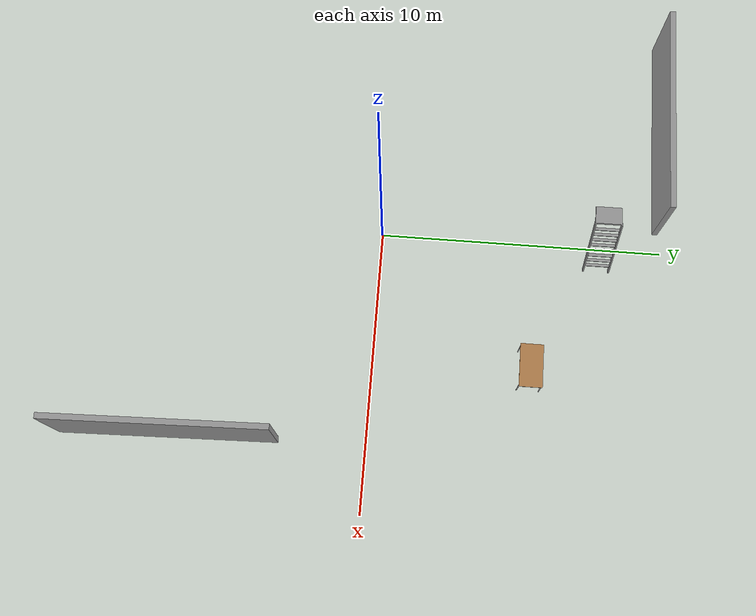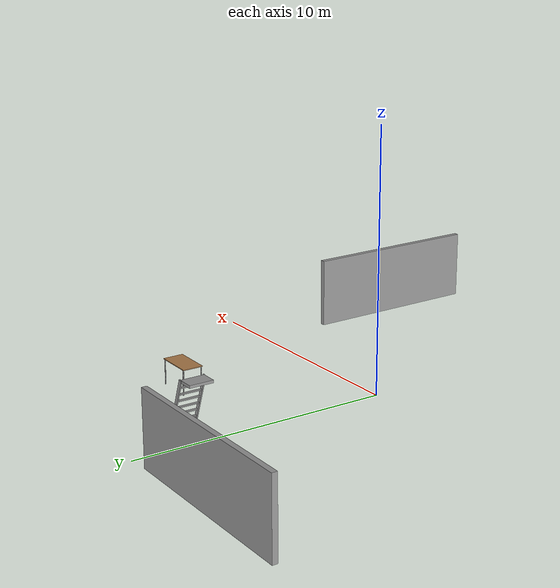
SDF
<sdf version="1.6">
 <world name="default">
  <light name="sun" type="directional">
   <pose>0 0 10 0 -0 0</pose>
   <diffuse>0.8 0.8 0.8 1</diffuse>
   <specular>0.2 0.2 0.2 1</specular>
   <attenuation>
    <range>1000</range>
    <constant>0.9</constant>
    <linear>0.01</linear>
    <quadratic>0.001</quadratic>
   </attenuation>
   <direction>-0.5 0.1 -0.9</direction>
  </light>
  <gravity>0 0 -9.8</gravity>
  <magnetic_field>6e-06 2.3e-05 -4.2e-05</magnetic_field>
  <atmosphere type="adiabatic"/>
  <physics name="default_physics" default="0" type="ode">
   <max_step_size>0.001</max_step_size>
   <real_time_factor>1</real_time_factor>
   <real_time_update_rate>1000</real_time_update_rate>
  </physics>
  <scene><ambient>0.4 0.4 0.4 1</ambient><background>0.7 0.7 0.7 1</background><shadows>1</shadows></scene>
  <audio><device>default</device></audio>
  <spherical_coordinates>
   <surface_model>EARTH_WGS84</surface_model>
   <latitude_deg>0</latitude_deg>
   <longitude_deg>0</longitude_deg>
   <elevation>0</elevation>
   <heading_deg>0</heading_deg>
  </spherical_coordinates>
  <model name="ladder_70deg_0rails">
   <static>1</static>
   <link name="step0">
    <pose>0 0.097059 0.266667 0 -0 0</pose>
    <inertial>
     <mass>9.75482</mass>
     <inertia>
      <ixx>0.00957124</ixx>
      <iyy>0.65963</iyy>
      <izz>0.666842</izz>
      <ixy>0</ixy>
      <ixz>0</ixz>
      <iyz>0</iyz>
     </inertia>
    </inertial>
    <collision name="collision"><geometry><box><size>0.9 0.1016 0.0381</size></box></geometry></collision>
    <visual name="visual">
     <geometry><box><size>0.9 0.1016 0.0381</size></box></geometry>
     <material>
      <script><uri>file://media/materials/scripts/gazebo.material</uri><name>Gazebo/Grey</name></script>
     </material>
    </visual>
   </link>
   <link name="step1">
    <pose>0 0.194117 0.533333 0 -0 0</pose>
    <inertial>
     <mass>9.75482</mass>
     <inertia>
      <ixx>0.00957124</ixx>
      <iyy>0.65963</iyy>
      <izz>0.666842</izz>
      <ixy>0</ixy>
      <ixz>0</ixz>
      <iyz>0</iyz>
     </inertia>
    </inertial>
    <collision name="collision"><geometry><box><size>0.9 0.1016 0.0381</size></box></geometry></collision>
    <visual name="visual">
     <geometry><box><size>0.9 0.1016 0.0381</size></box></geometry>
     <material>
      <script><uri>file://media/materials/scripts/gazebo.material</uri><name>Gazebo/Grey</name></script>
     </material>
    </visual>
   </link>
   <link name="step2">
    <pose>0 0.291176 0.8 0 -0 0</pose>
    <inertial>
     <mass>9.75482</mass>
     <inertia>
      <ixx>0.00957124</ixx>
      <iyy>0.65963</iyy>
      <izz>0.666842</izz>
      <ixy>0</ixy>
      <ixz>0</ixz>
      <iyz>0</iyz>
     </inertia>
    </inertial>
    <collision name="collision"><geometry><box><size>0.9 0.1016 0.0381</size></box></geometry></collision>
    <visual name="visual">
     <geometry><box><size>0.9 0.1016 0.0381</size></box></geometry>
     <material>
      <script><uri>file://media/materials/scripts/gazebo.material</uri><name>Gazebo/Grey</name></script>
     </material>
    </visual>
   </link>
   <link name="step3">
    <pose>0 0.388235 1.06667 0 -0 0</pose>
    <inertial>
     <mass>9.75482</mass>
     <inertia>
      <ixx>0.00957124</ixx>
      <iyy>0.65963</iyy>
      <izz>0.666842</izz>
      <ixy>0</ixy>
      <ixz>0</ixz>
      <iyz>0</iyz>
     </inertia>
    </inertial>
    <collision name="collision"><geometry><box><size>0.9 0.1016 0.0381</size></box></geometry></collision>
    <visual name="visual">
     <geometry><box><size>0.9 0.1016 0.0381</size></box></geometry>
     <material>
      <script><uri>file://media/materials/scripts/gazebo.material</uri><name>Gazebo/Grey</name></script>
     </material>
    </visual>
   </link>
   <link name="step4">
    <pose>0 0.485294 1.33333 0 -0 0</pose>
    <inertial>
     <mass>9.75482</mass>
     <inertia>
      <ixx>0.00957124</ixx>
      <iyy>0.65963</iyy>
      <izz>0.666842</izz>
      <ixy>0</ixy>
      <ixz>0</ixz>
      <iyz>0</iyz>
     </inertia>
    </inertial>
    <collision name="collision"><geometry><box><size>0.9 0.1016 0.0381</size></box></geometry></collision>
    <visual name="visual">
     <geometry><box><size>0.9 0.1016 0.0381</size></box></geometry>
     <material>
      <script><uri>file://media/materials/scripts/gazebo.material</uri><name>Gazebo/Grey</name></script>
     </material>
    </visual>
   </link>
   <link name="step5">
    <pose>0 0.582352 1.6 0 -0 0</pose>
    <inertial>
     <mass>9.75482</mass>
     <inertia>
      <ixx>0.00957124</ixx>
      <iyy>0.65963</iyy>
      <izz>0.666842</izz>
      <ixy>0</ixy>
      <ixz>0</ixz>
      <iyz>0</iyz>
     </inertia>
    </inertial>
    <collision name="collision"><geometry><box><size>0.9 0.1016 0.0381</size></box></geometry></collision>
    <visual name="visual">
     <geometry><box><size>0.9 0.1016 0.0381</size></box></geometry>
     <material>
      <script><uri>file://media/materials/scripts/gazebo.material</uri><name>Gazebo/Grey</name></script>
     </material>
    </visual>
   </link>
   <link name="step6">
    <pose>0 0.679411 1.86667 0 -0 0</pose>
    <inertial>
     <mass>9.75482</mass>
     <inertia>
      <ixx>0.00957124</ixx>
      <iyy>0.65963</iyy>
      <izz>0.666842</izz>
      <ixy>0</ixy>
      <ixz>0</ixz>
      <iyz>0</iyz>
     </inertia>
    </inertial>
    <collision name="collision"><geometry><box><size>0.9 0.1016 0.0381</size></box></geometry></collision>
    <visual name="visual">
     <geometry><box><size>0.9 0.1016 0.0381</size></box></geometry>
     <material>
      <script><uri>file://media/materials/scripts/gazebo.material</uri><name>Gazebo/Grey</name></script>
     </material>
    </visual>
   </link>
   <link name="step7">
    <pose>0 0.77647 2.13333 0 -0 0</pose>
    <inertial>
     <mass>9.75482</mass>
     <inertia>
      <ixx>0.00957124</ixx>
      <iyy>0.65963</iyy>
      <izz>0.666842</izz>
      <ixy>0</ixy>
      <ixz>0</ixz>
      <iyz>0</iyz>
     </inertia>
    </inertial>
    <collision name="collision"><geometry><box><size>0.9 0.1016 0.0381</size></box></geometry></collision>
    <visual name="visual">
     <geometry><box><size>0.9 0.1016 0.0381</size></box></geometry>
     <material>
      <script><uri>file://media/materials/scripts/gazebo.material</uri><name>Gazebo/Grey</name></script>
     </material>
    </visual>
   </link>
   <link name="landing">
    <pose>0 1.17353 2.4 0 -0 0</pose>
    <inertial>
     <mass>57.6072</mass>
     <inertia><ixx>1.73518</ixx><iyy>3.89545</iyy><izz>5.6167</izz><ixy>0</ixy><ixz>0</ixz><iyz>0</iyz></inertia>
    </inertial>
    <collision name="collision"><geometry><box><size>0.9 0.6 0.1016</size></box></geometry></collision>
    <visual name="visual">
     <geometry><box><size>0.9 0.6 0.1016</size></box></geometry>
     <material>
      <script><uri>file://media/materials/scripts/gazebo.material</uri><name>Gazebo/Grey</name></script>
     </material>
    </visual>
   </link>
   <link name="left_side_wall">
    <pose>-0.45 0.436764 1.2 1.22173 -0 0</pose>
    <collision name="collision"><geometry><box><size>0.0508 2.63403 0.13</size></box></geometry></collision>
    <visual name="visual">
     <geometry><box><size>0.0508 2.63403 0.13</size></box></geometry>
     <material>
      <script><uri>file://media/materials/scripts/gazebo.material</uri><name>Gazebo/Grey</name></script>
     </material>
    </visual>
   </link>
   <link name="right_side_wall">
    <pose>0.45 0.436764 1.2 1.22173 -0 0</pose>
    <collision name="collision"><geometry><box><size>0.0508 2.63403 0.13</size></box></geometry></collision>
    <visual name="visual">
     <geometry><box><size>0.0508 2.63403 0.13</size></box></geometry>
     <material>
      <script><uri>file://media/materials/scripts/gazebo.material</uri><name>Gazebo/Grey</name></script>
     </material>
    </visual>
   </link>
   <pose>0.757781 7.72562 0 0 -0 1.57433</pose>
  </model>
  <model name="table">
   <static>1</static>
   <link name="link">
    <collision name="surface">
     <pose>0 0 1 0 -0 0</pose>
     <geometry><box><size>1.5 0.8 0.03</size></box></geometry>
     <surface><friction><ode><mu>0.6</mu><mu2>0.6</mu2></ode></friction></surface>
    </collision>
    <visual name="visual1">
     <pose>0 0 1 0 -0 0</pose>
     <geometry><box><size>1.5 0.8 0.03</size></box></geometry>
     <material>
      <script><uri>file://media/materials/scripts/gazebo.material</uri><name>Gazebo/Wood</name></script>
     </material>
    </visual>
    <collision name="front_left_leg">
     <pose>0.68 0.38 0.5 0 -0 0</pose>
     <geometry><cylinder><radius>0.02</radius><length>1</length></cylinder></geometry>
    </collision>
    <visual name="front_left_leg">
     <pose>0.68 0.38 0.5 0 -0 0</pose>
     <geometry><cylinder><radius>0.02</radius><length>1</length></cylinder></geometry>
     <material>
      <script><uri>file://media/materials/scripts/gazebo.material</uri><name>Gazebo/Grey</name></script>
     </material>
    </visual>
    <collision name="front_right_leg">
     <pose>0.68 -0.38 0.5 0 -0 0</pose>
     <geometry><cylinder><radius>0.02</radius><length>1</length></cylinder></geometry>
    </collision>
    <visual name="front_right_leg">
     <pose>0.68 -0.38 0.5 0 -0 0</pose>
     <geometry><cylinder><radius>0.02</radius><length>1</length></cylinder></geometry>
     <material>
      <script><uri>file://media/materials/scripts/gazebo.material</uri><name>Gazebo/Grey</name></script>
     </material>
    </visual>
    <collision name="back_right_leg">
     <pose>-0.68 -0.38 0.5 0 -0 0</pose>
     <geometry><cylinder><radius>0.02</radius><length>1</length></cylinder></geometry>
    </collision>
    <visual name="back_right_leg">
     <pose>-0.68 -0.38 0.5 0 -0 0</pose>
     <geometry><cylinder><radius>0.02</radius><length>1</length></cylinder></geometry>
     <material>
      <script><uri>file://media/materials/scripts/gazebo.material</uri><name>Gazebo/Grey</name></script>
     </material>
    </visual>
    <collision name="back_left_leg">
     <pose>-0.68 0.38 0.5 0 -0 0</pose>
     <geometry><cylinder><radius>0.02</radius><length>1</length></cylinder></geometry>
    </collision>
    <visual name="back_left_leg">
     <pose>-0.68 0.38 0.5 0 -0 0</pose>
     <geometry><cylinder><radius>0.02</radius><length>1</length></cylinder></geometry>
     <material>
      <script><uri>file://media/materials/scripts/gazebo.material</uri><name>Gazebo/Grey</name></script>
     </material>
    </visual>
   </link>
   <pose>4.65263 5.43918 0 0 -0 0</pose>
  </model>
  <model name="grey_wall">
   <static>1</static>
   <link name="link">
    <pose>0 0 1.4 0 -0 0</pose>
    <collision name="collision"><geometry><box><size>7.5 0.2 2.8</size></box></geometry></collision>
    <visual name="visual">
     <cast_shadows>0</cast_shadows>
     <geometry><box><size>7.5 0.2 2.8</size></box></geometry>
     <material>
      <script>
       <uri>model://grey_wall/materials/scripts</uri>
       <uri>model://grey_wall/materials/textures</uri>
       <name>vrc/grey_wall</name>
      </script>
     </material>
    </visual>
   </link>
   <pose>-4.48738 9.81389 0 0 -0 0</pose>
  </model>
  <model name="grey_wall_0">
   <static>1</static>
   <link name="link">
    <pose>0 0 1.4 0 -0 0</pose>
    <collision name="collision"><geometry><box><size>7.5 0.2 2.8</size></box></geometry></collision>
    <visual name="visual">
     <cast_shadows>0</cast_shadows>
     <geometry><box><size>7.5 0.2 2.8</size></box></geometry>
     <material>
      <script>
       <uri>model://grey_wall/materials/scripts</uri>
       <uri>model://grey_wall/materials/textures</uri>
       <name>vrc/grey_wall</name>
      </script>
     </material>
    </visual>
   </link>
   <pose>7.75536 -6.73546 0 0 0 -1.54553</pose>
  </model>
 </world>
</sdf>
